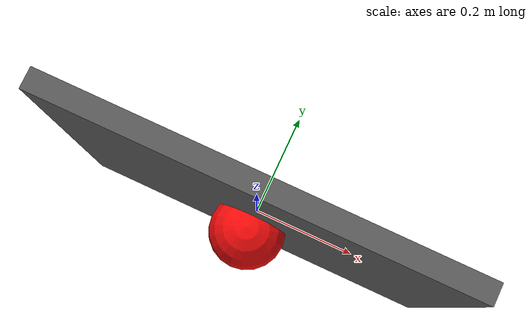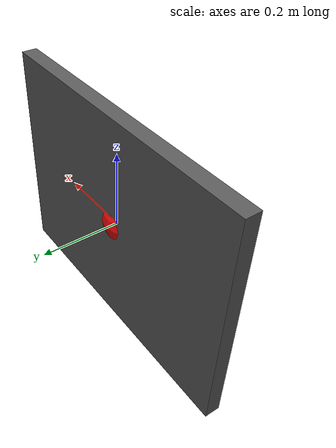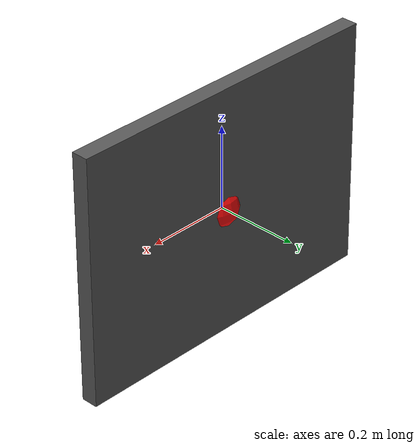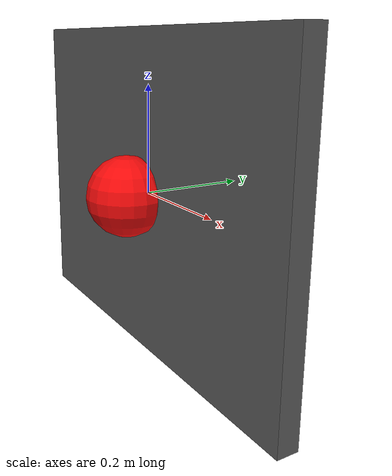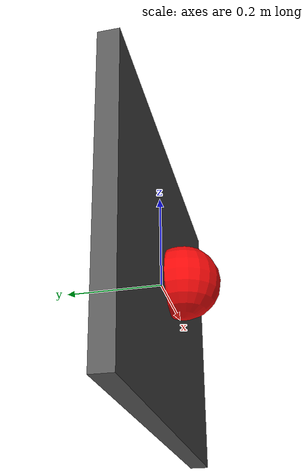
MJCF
<mujoco model="entryplug_borrowed_light_panel">
  <compiler angle="radian"/>
  <option timestep="0.002"/>

  <visual>
    <headlight diffuse="0 0 0" ambient="0 0 0" specular="0 0 0"/>
    <rgba haze="0 0 0 1"/>
  </visual>

  <worldbody>
    <light name="fixture_lamp" pos="0 -0.6 0.8" dir="0 1 -0.2"
      directional="true" castshadow="false" diffuse="1 1 1" ambient="0.1 0.1 0.1"/>
    <camera name="panel_camera" fovy="50" mode="fixed" resolution="320 240"
      pos="0 -1.2 0" xyaxes="1 0 0 0 0 1"/>
    <geom name="panel" type="box" pos="0 0 0" size="0.4 0.02 0.3"
      rgba="0.35 0.35 0.35 1" contype="0" conaffinity="0"/>
    <geom name="red_marker" type="sphere" pos="0 -0.045 0" size="0.075"
      rgba="0.95 0.04 0.04 1" contype="0" conaffinity="0"/>
  </worldbody>
</mujoco>
